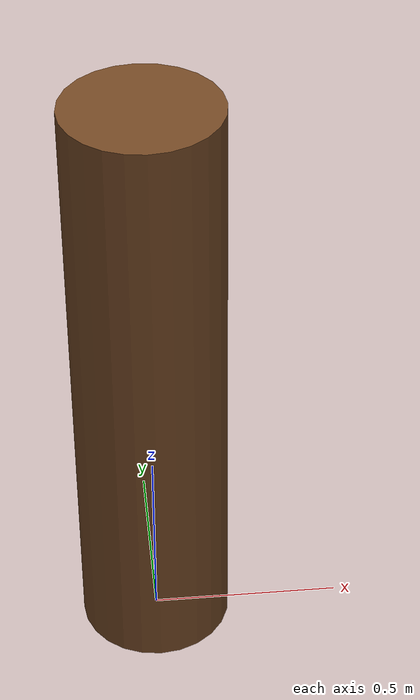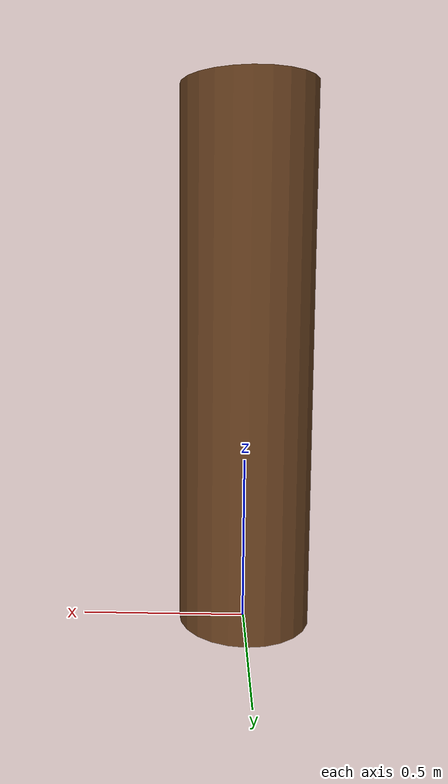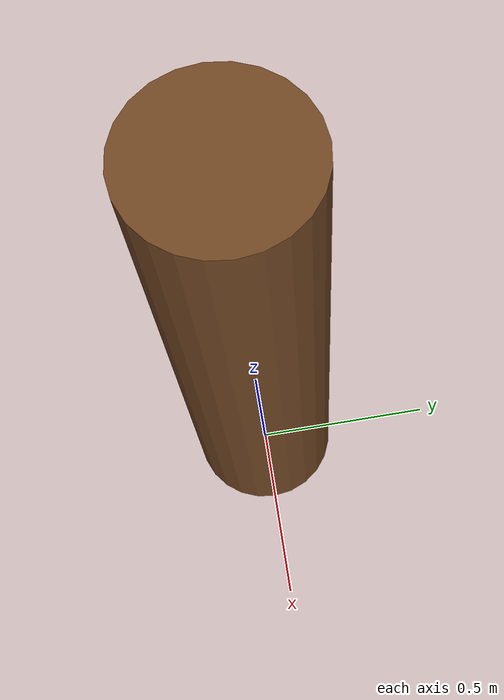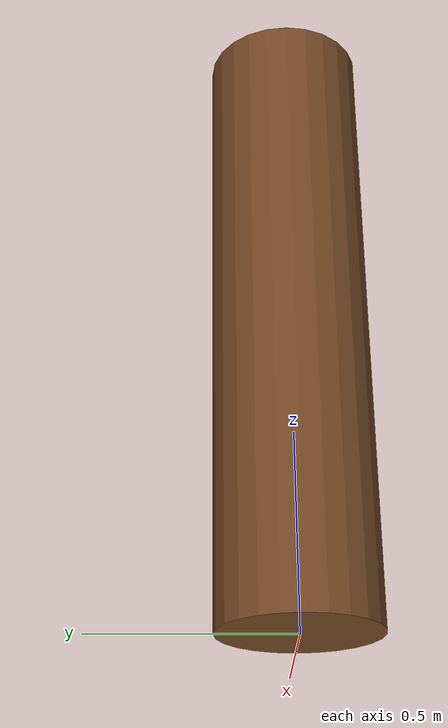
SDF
<?xml version="1.0" ?>
<sdf version="1.8">
  <model name="tree_trunk">
    <static>true</static>
    <link name="link">
      <pose>0 0 0.8 0 0 0</pose>
      <collision name="collision">
        <geometry>
          <cylinder>
            <radius>0.20</radius>
            <length>1.6</length>
          </cylinder>
        </geometry>
        <surface>
          <friction>
            <ode>
              <mu>1.0</mu>
              <mu2>1.0</mu2>
            </ode>
          </friction>
        </surface>
      </collision>
      <visual name="visual">
        <geometry>
          <cylinder>
            <radius>0.20</radius>
            <length>1.6</length>
          </cylinder>
        </geometry>
        <material>
          <ambient>0.35 0.22 0.12 1</ambient>
          <diffuse>0.45 0.28 0.14 1</diffuse>
          <specular>0.05 0.05 0.05 1</specular>
        </material>
      </visual>
    </link>
  </model>
</sdf>
